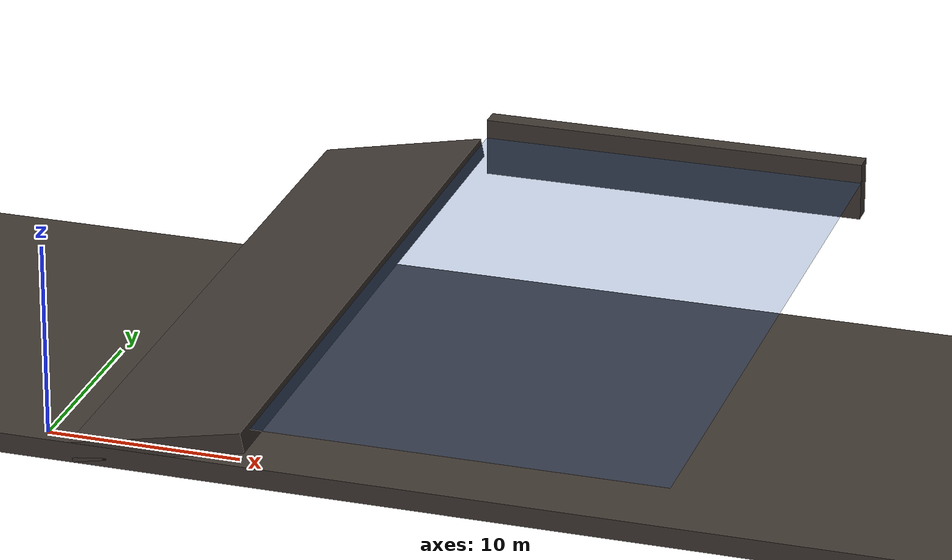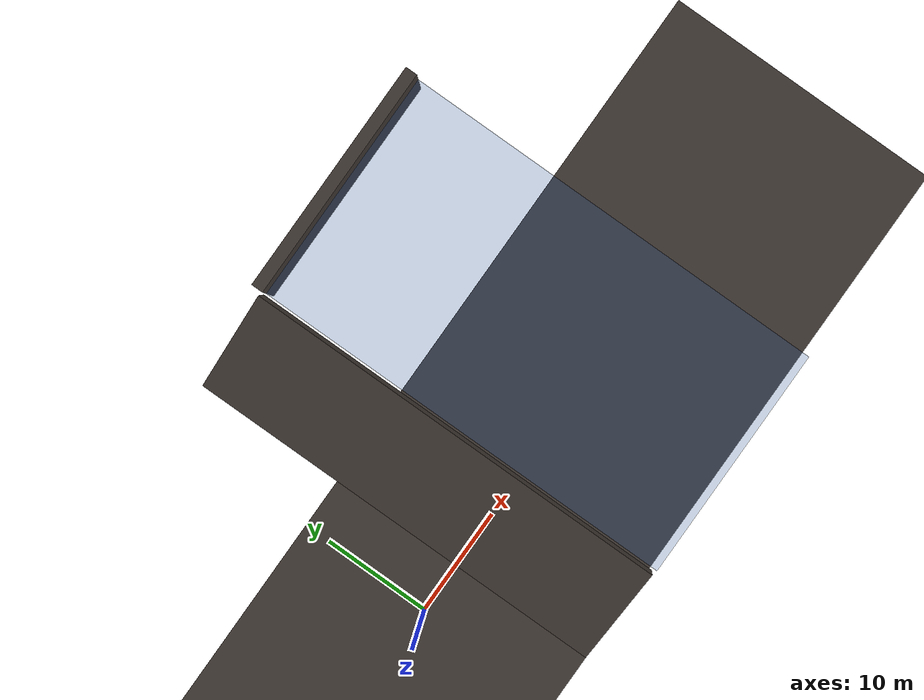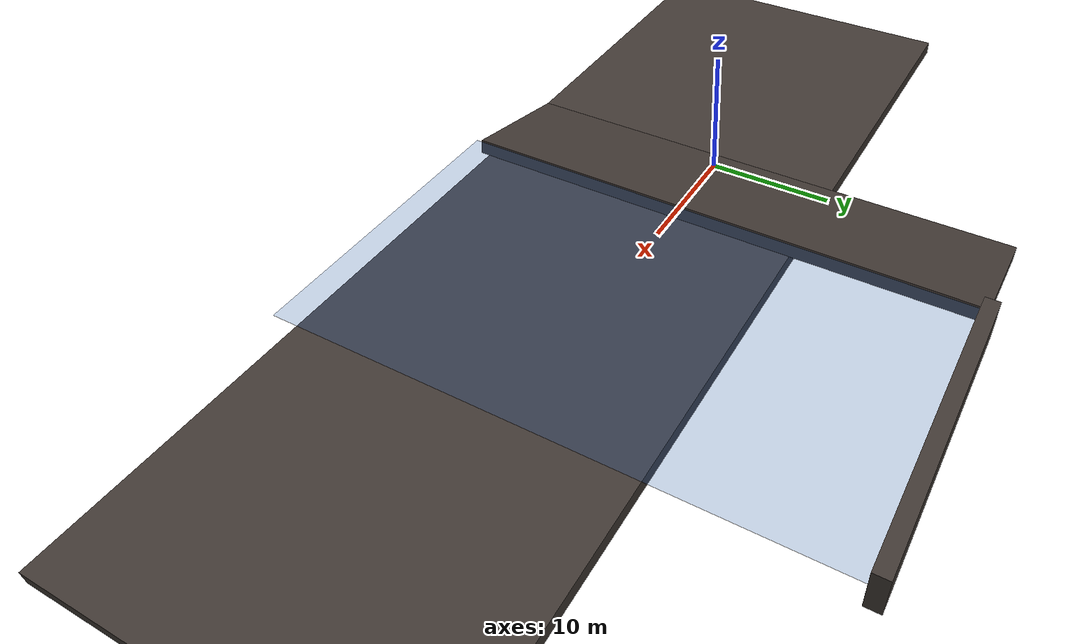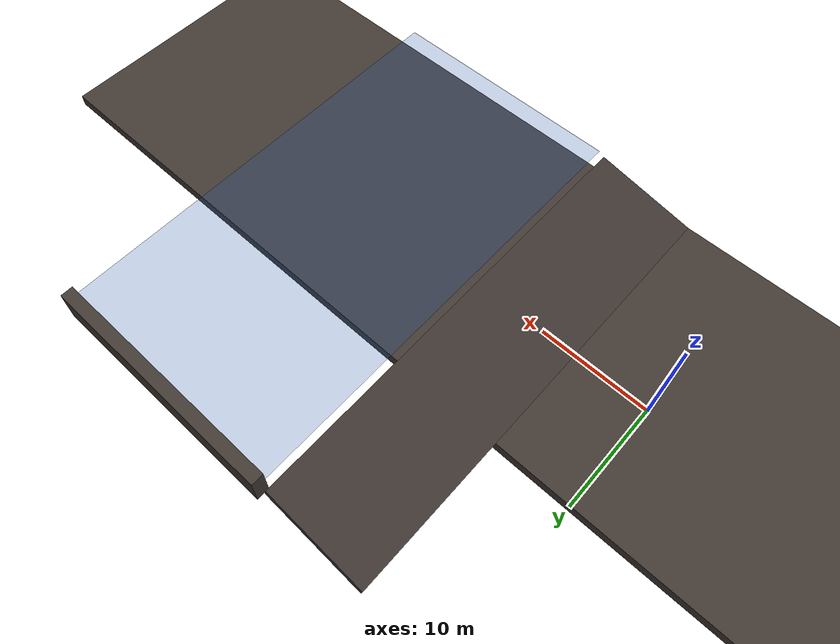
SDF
<sdf version="1.9">
 <world name="sic_slam_cave_water">
  <physics name="4ms" type="ode">
   <max_step_size>0.004</max_step_size>
   <real_time_factor>1.0</real_time_factor>
  </physics>
  <plugin filename="gz-sim-physics-system" name="gz::sim::systems::Physics"/>
  <plugin filename="gz-sim-user-commands-system" name="gz::sim::systems::UserCommands"/>
  <plugin filename="gz-sim-scene-broadcaster-system" name="gz::sim::systems::SceneBroadcaster"/>
  <plugin filename="gz-sim-sensors-system" name="gz::sim::systems::Sensors">
   <render_engine>ogre2</render_engine>
  </plugin>
  <plugin filename="gz-sim-imu-system" name="gz::sim::systems::Imu"/>
  <plugin filename="gz-sim-buoyancy-system" name="gz::sim::systems::Buoyancy">
   <graded_buoyancy>
    <default_density>1000</default_density>
    <density_change><above_depth>7.9</above_depth><density>1</density></density_change>
   </graded_buoyancy>
   <enable>bluerov2</enable>
  </plugin>
  <light type="directional" name="sun">
   <pose>0 0 10 0 0 0</pose>
   <diffuse>0.8 0.8 0.8 1</diffuse>
   <specular>0.2 0.2 0.2 1</specular>
   <direction>-0.5 0.1 -0.9</direction>
  </light>
  <model name="ground_plane">
   <static>true</static>
   <pose>0 0 -200 0 0 0</pose>
   <link name="link">
    <collision name="collision">
     <geometry><plane><normal>0 0 1</normal><size>1000 1000</size></plane></geometry>
    </collision>
    <visual name="visual">
     <geometry><plane><normal>0 0 1</normal><size>1000 1000</size></plane></geometry>
     <material><ambient>0.8 0.8 0.8 1</ambient><diffuse>0.8 0.8 0.8 1</diffuse></material>
    </visual>
   </link>
  </model>
  <model name="cave_floor_patch">
   <static>true</static>
   <pose>15 0 5.4 0 0 0</pose>
   <link name="link">
    <collision name="collision">
     <geometry><box><size>110 24 1</size></box></geometry>
     <surface>
      <contact><ode><max_vel>2.0</max_vel></ode></contact>
      <friction><ode><mu>1.0</mu><mu2>1.0</mu2></ode></friction>
     </surface>
    </collision>
    <visual name="visual">
     <geometry><box><size>110 24 1</size></box></geometry>
     <material><ambient>0.25 0.22 0.2 1</ambient><diffuse>0.25 0.22 0.2 1</diffuse></material>
    </visual>
   </link>
  </model>
  <model name="shoreline_ramp">
   <static>true</static>
   <pose>10.3481 6.5 6.2597 0 -0.1974 0</pose>
   <link name="link">
    <collision name="collision">
     <geometry><box><size>8.668 37 1</size></box></geometry>
     <surface>
      <contact><ode><max_vel>2.0</max_vel></ode></contact>
      <friction><ode><mu>1.0</mu><mu2>1.0</mu2></ode></friction>
     </surface>
    </collision>
    <visual name="visual">
     <geometry><box><size>8.668 37 1</size></box></geometry>
     <material><ambient>0.25 0.22 0.2 1</ambient><diffuse>0.25 0.22 0.2 1</diffuse></material>
    </visual>
   </link>
  </model>
  <model name="water_surface">
   <static>true</static>
   <pose>25 6.5 7.9 0 0 0</pose>
   <link name="surface">
    <visual name="water_visual">
     <geometry><plane><size>20 37</size></plane></geometry>
     <material><diffuse>0.1 0.3 0.6 0.25</diffuse><ambient>0.1 0.3 0.6 0.25</ambient></material>
    </visual>
   </link>
  </model>
  <model name="north_boundary_wall">
   <static>true</static>
   <pose>25 25 7.4 0 0 0</pose>
   <link name="link">
    <collision name="collision">
     <geometry><box><size>20 1 3</size></box></geometry>
     <surface>
      <contact><ode><max_vel>2.0</max_vel></ode></contact>
      <friction><ode><mu>1.0</mu><mu2>1.0</mu2></ode></friction>
     </surface>
    </collision>
    <visual name="visual">
     <geometry><box><size>20 1 3</size></box></geometry>
     <material><ambient>0.25 0.22 0.2 1</ambient><diffuse>0.25 0.22 0.2 1</diffuse></material>
    </visual>
   </link>
  </model>
 </world>
</sdf>
